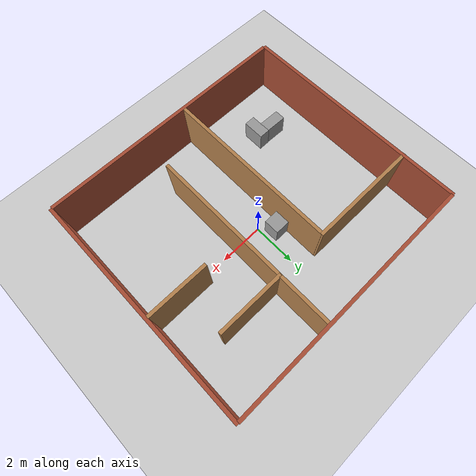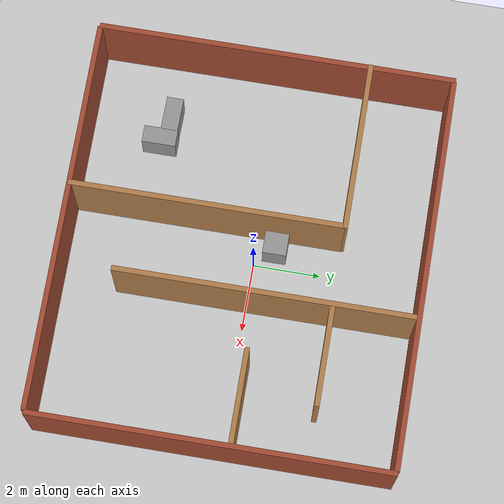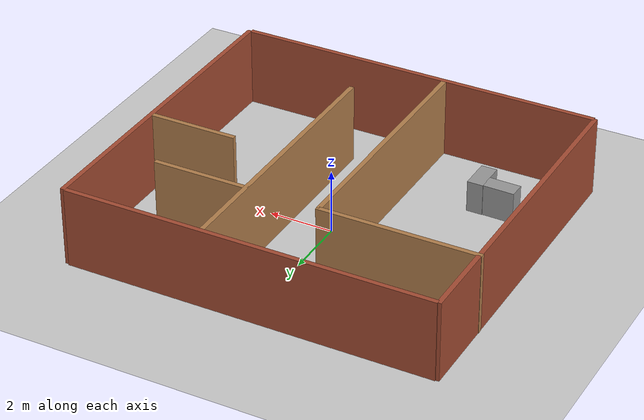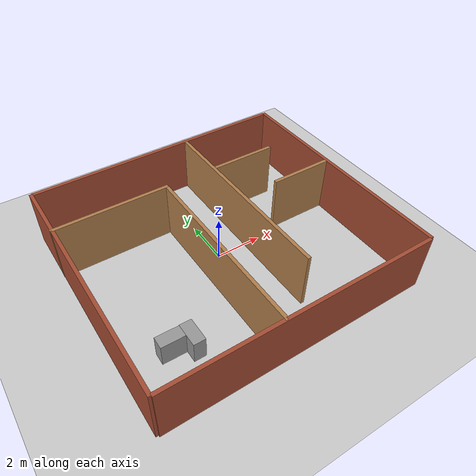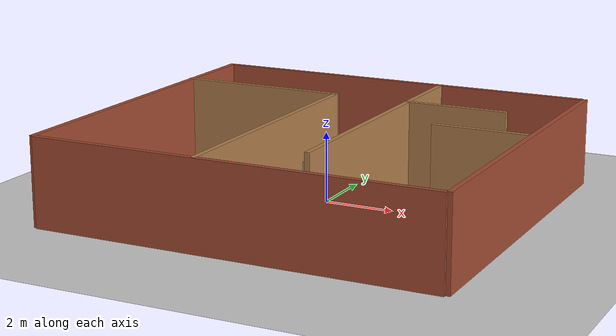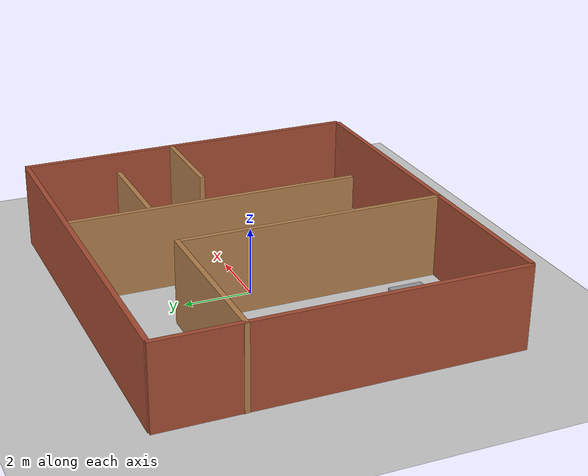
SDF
<sdf version='1.7'>
  <world name='default'>
    <plugin name='gazebo_ros_state' filename='libgazebo_ros_state.so'>
      <ros>
        <namespace>/test</namespace>
        <argument>model_states:=model_states_demo</argument>
      </ros>
      <update_rate>1.0</update_rate>
    </plugin>
    <light name='sun' type='directional'>
      <cast_shadows>0</cast_shadows>
      <pose>0 0 10 0 -0 0</pose>
      <diffuse>0.8 0.8 0.8 1</diffuse>
      <specular>0.2 0.2 0.2 1</specular>
      <attenuation>
        <range>1000</range>
        <constant>0.9</constant>
        <linear>0.01</linear>
        <quadratic>0.001</quadratic>
      </attenuation>
      <direction>-0.5 0.1 -0.9</direction>
      <spot>
        <inner_angle>0</inner_angle>
        <outer_angle>0</outer_angle>
        <falloff>0</falloff>
      </spot>
    </light>
    <model name='ground_plane'>
      <static>1</static>
      <link name='link'>
        <collision name='collision'>
          <geometry>
            <plane>
              <normal>0 0 1</normal>
              <size>100 100</size>
            </plane>
          </geometry>
          <surface>
            <contact>
              <collide_bitmask>65535</collide_bitmask>
              <ode />
            </contact>
            <friction>
              <ode>
                <mu>100</mu>
                <mu2>50</mu2>
              </ode>
              <torsional>
                <ode />
              </torsional>
            </friction>
            <bounce />
          </surface>
          <max_contacts>10</max_contacts>
        </collision>
        <visual name='visual'>
          <cast_shadows>0</cast_shadows>
          <geometry>
            <plane>
              <normal>0 0 1</normal>
              <size>100 100</size>
            </plane>
          </geometry>
          <material>
            <script>
              <uri>file://media/materials/scripts/gazebo.material</uri>
              <name>Gazebo/Grey</name>
            </script>
          </material>
        </visual>
        <self_collide>0</self_collide>
        <enable_wind>0</enable_wind>
        <kinematic>0</kinematic>
      </link>
    </model>
    <gravity>0 0 -9.8</gravity>
    <magnetic_field>6e-06 2.3e-05 -4.2e-05</magnetic_field>
    <atmosphere type='adiabatic' />
    <physics type='ode'>
      <max_step_size>0.001</max_step_size>
      <real_time_factor>1</real_time_factor>
      <real_time_update_rate>1000</real_time_update_rate>
    </physics>
    <scene>
      <ambient>0.4 0.4 0.4 1</ambient>
      <background>0.7 0.7 0.7 1</background>
      <shadows>0</shadows>
    </scene>
    <audio>
      <device>default</device>
    </audio>
    <wind />
    <spherical_coordinates>
      <surface_model>EARTH_WGS84</surface_model>
      <latitude_deg>0</latitude_deg>
      <longitude_deg>0</longitude_deg>
      <elevation>0</elevation>
      <heading_deg>0</heading_deg>
    </spherical_coordinates>
    <model name='social_env_test'>
      <link name='Wall_10'>
        <pose>-4e-06 -5.48827 0 0 -0 3.14159</pose>
        <self_collide>0</self_collide>
        <enable_wind>0</enable_wind>
        <kinematic>0</kinematic>
        <visual name='Wall_10_Visual'>
          <pose>0 0 1.25 0 -0 0</pose>
          <geometry>
            <box>
              <size>11.5 0.15 2.5</size>
            </box>
          </geometry>
          <material>
            <script>
              <uri>file://media/materials/scripts/gazebo.material</uri>
              <name>Gazebo/Bricks</name>
            </script>
            <ambient>1 1 1 1</ambient>
            <shader type='pixel' />
          </material>
          <meta>
            <layer>0</layer>
          </meta>
          <transparency>0</transparency>
          <cast_shadows>1</cast_shadows>
        </visual>
        <collision name='Wall_10_Collision'>
          <laser_retro>0</laser_retro>
          <max_contacts>10</max_contacts>
          <pose>0 0 1.25 0 -0 0</pose>
          <geometry>
            <box>
              <size>11.5 0.15 2.5</size>
            </box>
          </geometry>
          <surface>
            <friction>
              <ode>
                <mu>1</mu>
                <mu2>1</mu2>
                <fdir1>0 0 0</fdir1>
                <slip1>0</slip1>
                <slip2>0</slip2>
              </ode>
              <torsional>
                <coefficient>1</coefficient>
                <patch_radius>0</patch_radius>
                <surface_radius>0</surface_radius>
                <use_patch_radius>1</use_patch_radius>
                <ode>
                  <slip>0</slip>
                </ode>
              </torsional>
            </friction>
            <bounce>
              <restitution_coefficient>0</restitution_coefficient>
              <threshold>1e+06</threshold>
            </bounce>
            <contact>
              <collide_without_contact>0</collide_without_contact>
              <collide_without_contact_bitmask>1</collide_without_contact_bitmask>
              <collide_bitmask>1</collide_bitmask>
              <ode>
                <soft_cfm>0</soft_cfm>
                <soft_erp>0.2</soft_erp>
                <kp>1e+13</kp>
                <kd>1</kd>
                <max_vel>0.01</max_vel>
                <min_depth>0</min_depth>
              </ode>
              <bullet>
                <split_impulse>1</split_impulse>
                <split_impulse_penetration_threshold>-0.01</split_impulse_penetration_threshold>
                <soft_cfm>0</soft_cfm>
                <soft_erp>0.2</soft_erp>
                <kp>1e+13</kp>
                <kd>1</kd>
              </bullet>
            </contact>
          </surface>
        </collision>
      </link>
      <link name='Wall_15'>
        <pose>-3.36885 2.48634 0 0 -0 0</pose>
        <self_collide>0</self_collide>
        <enable_wind>0</enable_wind>
        <kinematic>0</kinematic>
        <visual name='Wall_15_Visual'>
          <pose>0 0 1.25 0 -0 0</pose>
          <geometry>
            <box>
              <size>5 0.15 2.5</size>
            </box>
          </geometry>
          <material>
            <script>
              <uri>file://media/materials/scripts/gazebo.material</uri>
              <name>Gazebo/Wood</name>
            </script>
            <ambient>1 1 1 1</ambient>
            <shader type='pixel' />
          </material>
          <meta>
            <layer>0</layer>
          </meta>
          <transparency>0</transparency>
          <cast_shadows>1</cast_shadows>
        </visual>
        <collision name='Wall_15_Collision'>
          <laser_retro>0</laser_retro>
          <max_contacts>10</max_contacts>
          <pose>0 0 1.25 0 -0 0</pose>
          <geometry>
            <box>
              <size>5 0.15 2.5</size>
            </box>
          </geometry>
          <surface>
            <friction>
              <ode>
                <mu>1</mu>
                <mu2>1</mu2>
                <fdir1>0 0 0</fdir1>
                <slip1>0</slip1>
                <slip2>0</slip2>
              </ode>
              <torsional>
                <coefficient>1</coefficient>
                <patch_radius>0</patch_radius>
                <surface_radius>0</surface_radius>
                <use_patch_radius>1</use_patch_radius>
                <ode>
                  <slip>0</slip>
                </ode>
              </torsional>
            </friction>
            <bounce>
              <restitution_coefficient>0</restitution_coefficient>
              <threshold>1e+06</threshold>
            </bounce>
            <contact>
              <collide_without_contact>0</collide_without_contact>
              <collide_without_contact_bitmask>1</collide_without_contact_bitmask>
              <collide_bitmask>1</collide_bitmask>
              <ode>
                <soft_cfm>0</soft_cfm>
                <soft_erp>0.2</soft_erp>
                <kp>1e+13</kp>
                <kd>1</kd>
                <max_vel>0.01</max_vel>
                <min_depth>0</min_depth>
              </ode>
              <bullet>
                <split_impulse>1</split_impulse>
                <split_impulse_penetration_threshold>-0.01</split_impulse_penetration_threshold>
                <soft_cfm>0</soft_cfm>
                <soft_erp>0.2</soft_erp>
                <kp>1e+13</kp>
                <kd>1</kd>
              </bullet>
            </contact>
          </surface>
        </collision>
      </link>
      <link name='Wall_16'>
        <pose>-0.930907 -1.52206 -0 0 0 -1.5708</pose>
        <self_collide>0</self_collide>
        <enable_wind>0</enable_wind>
        <kinematic>0</kinematic>
        <inertial>
          <inertia>
            <ixx>0</ixx>
            <ixy>0</ixy>
            <ixz>0</ixz>
            <iyy>0</iyy>
            <iyz>0</iyz>
            <izz>0</izz>
          </inertia>
          <mass>0</mass>
          <pose>0 0 0 0 -0 0</pose>
        </inertial>
        <visual name='Wall_16_Visual'>
          <pose>0 0 1.25 0 -0 0</pose>
          <geometry>
            <box>
              <size>8.00736 0.15 2.5</size>
            </box>
          </geometry>
          <material>
            <script>
              <uri>file://media/materials/scripts/gazebo.material</uri>
              <name>Gazebo/Wood</name>
            </script>
            <ambient>1 1 1 1</ambient>
            <shader type='pixel' />
          </material>
          <meta>
            <layer>0</layer>
          </meta>
          <transparency>0</transparency>
          <cast_shadows>1</cast_shadows>
        </visual>
        <collision name='Wall_16_Collision'>
          <laser_retro>0</laser_retro>
          <max_contacts>10</max_contacts>
          <pose>0 0 1.25 0 -0 0</pose>
          <geometry>
            <box>
              <size>8.00736 0.15 2.5</size>
            </box>
          </geometry>
          <surface>
            <friction>
              <ode>
                <mu>1</mu>
                <mu2>1</mu2>
                <fdir1>0 0 0</fdir1>
                <slip1>0</slip1>
                <slip2>0</slip2>
              </ode>
              <torsional>
                <coefficient>1</coefficient>
                <patch_radius>0</patch_radius>
                <surface_radius>0</surface_radius>
                <use_patch_radius>1</use_patch_radius>
                <ode>
                  <slip>0</slip>
                </ode>
              </torsional>
            </friction>
            <bounce>
              <restitution_coefficient>0</restitution_coefficient>
              <threshold>1e+06</threshold>
            </bounce>
            <contact>
              <collide_without_contact>0</collide_without_contact>
              <collide_without_contact_bitmask>1</collide_without_contact_bitmask>
              <collide_bitmask>1</collide_bitmask>
              <ode>
                <soft_cfm>0</soft_cfm>
                <soft_erp>0.2</soft_erp>
                <kp>1e+13</kp>
                <kd>1</kd>
                <max_vel>0.01</max_vel>
                <min_depth>0</min_depth>
              </ode>
              <bullet>
                <split_impulse>1</split_impulse>
                <split_impulse_penetration_threshold>-0.01</split_impulse_penetration_threshold>
                <soft_cfm>0</soft_cfm>
                <soft_erp>0.2</soft_erp>
                <kp>1e+13</kp>
                <kd>1</kd>
              </bullet>
            </contact>
          </surface>
        </collision>
      </link>
      <link name='Wall_39'>
        <pose>1.35978 0.509333 0 0 -0 1.5708</pose>
        <self_collide>0</self_collide>
        <enable_wind>0</enable_wind>
        <kinematic>0</kinematic>
        <gravity>1</gravity>
        <inertial>
          <mass>1</mass>
          <pose>0 0 0 0 -0 0</pose>
          <inertia>
            <ixx>1</ixx>
            <ixy>0</ixy>
            <ixz>0</ixz>
            <iyy>1</iyy>
            <iyz>0</iyz>
            <izz>1</izz>
          </inertia>
        </inertial>
        <visual name='Wall_39_Visual'>
          <pose>0 0 1.25 0 -0 0</pose>
          <geometry>
            <box>
              <size>8.7 0.15 2.5</size>
            </box>
          </geometry>
          <material>
            <script>
              <uri>file://media/materials/scripts/gazebo.material</uri>
              <name>Gazebo/Wood</name>
            </script>
            <ambient>1 1 1 1</ambient>
            <shader type='pixel'>
              <normal_map>__default__</normal_map>
            </shader>
            <diffuse>1 1 1 1</diffuse>
            <specular>0.2 0.2 0.2 1</specular>
            <emissive>0 0 0 1</emissive>
          </material>
          <meta>
            <layer>0</layer>
          </meta>
          <transparency>0</transparency>
          <cast_shadows>1</cast_shadows>
        </visual>
        <collision name='Wall_39_Collision'>
          <laser_retro>0</laser_retro>
          <max_contacts>10</max_contacts>
          <pose>0 0 1.25 0 -0 0</pose>
          <geometry>
            <box>
              <size>8.7 0.15 2.5</size>
            </box>
          </geometry>
          <surface>
            <friction>
              <ode>
                <mu>1</mu>
                <mu2>1</mu2>
                <fdir1>0 0 0</fdir1>
                <slip1>0</slip1>
                <slip2>0</slip2>
              </ode>
              <torsional>
                <coefficient>1</coefficient>
                <patch_radius>0</patch_radius>
                <surface_radius>0</surface_radius>
                <use_patch_radius>1</use_patch_radius>
                <ode>
                  <slip>0</slip>
                </ode>
              </torsional>
            </friction>
            <bounce>
              <restitution_coefficient>0</restitution_coefficient>
              <threshold>1e+06</threshold>
            </bounce>
            <contact>
              <collide_without_contact>0</collide_without_contact>
              <collide_without_contact_bitmask>1</collide_without_contact_bitmask>
              <collide_bitmask>1</collide_bitmask>
              <ode>
                <soft_cfm>0</soft_cfm>
                <soft_erp>0.2</soft_erp>
                <kp>1e+13</kp>
                <kd>1</kd>
                <max_vel>0.01</max_vel>
                <min_depth>0</min_depth>
              </ode>
              <bullet>
                <split_impulse>1</split_impulse>
                <split_impulse_penetration_threshold>-0.01</split_impulse_penetration_threshold>
                <soft_cfm>0</soft_cfm>
                <soft_erp>0.2</soft_erp>
                <kp>1e+13</kp>
                <kd>1</kd>
              </bullet>
            </contact>
          </surface>
        </collision>
      </link>
      <link name='Wall_41'>
        <pose>2.81531 2.48495 0 0 -0 0</pose>
        <self_collide>0</self_collide>
        <enable_wind>0</enable_wind>
        <kinematic>0</kinematic>
        <visual name='Wall_41_Visual'>
          <pose>0 0 1.25 0 -0 0</pose>
          <geometry>
            <box>
              <size>3 0.15 2.5</size>
            </box>
          </geometry>
          <material>
            <script>
              <uri>file://media/materials/scripts/gazebo.material</uri>
              <name>Gazebo/Wood</name>
            </script>
            <ambient>1 1 1 1</ambient>
            <shader type='pixel' />
          </material>
          <meta>
            <layer>0</layer>
          </meta>
          <transparency>0</transparency>
          <cast_shadows>1</cast_shadows>
        </visual>
        <collision name='Wall_41_Collision'>
          <laser_retro>0</laser_retro>
          <max_contacts>10</max_contacts>
          <pose>0 0 1.25 0 -0 0</pose>
          <geometry>
            <box>
              <size>3 0.15 2.5</size>
            </box>
          </geometry>
          <surface>
            <friction>
              <ode>
                <mu>1</mu>
                <mu2>1</mu2>
                <fdir1>0 0 0</fdir1>
                <slip1>0</slip1>
                <slip2>0</slip2>
              </ode>
              <torsional>
                <coefficient>1</coefficient>
                <patch_radius>0</patch_radius>
                <surface_radius>0</surface_radius>
                <use_patch_radius>1</use_patch_radius>
                <ode>
                  <slip>0</slip>
                </ode>
              </torsional>
            </friction>
            <bounce>
              <restitution_coefficient>0</restitution_coefficient>
              <threshold>1e+06</threshold>
            </bounce>
            <contact>
              <collide_without_contact>0</collide_without_contact>
              <collide_without_contact_bitmask>1</collide_without_contact_bitmask>
              <collide_bitmask>1</collide_bitmask>
              <ode>
                <soft_cfm>0</soft_cfm>
                <soft_erp>0.2</soft_erp>
                <kp>1e+13</kp>
                <kd>1</kd>
                <max_vel>0.01</max_vel>
                <min_depth>0</min_depth>
              </ode>
              <bullet>
                <split_impulse>1</split_impulse>
                <split_impulse_penetration_threshold>-0.01</split_impulse_penetration_threshold>
                <soft_cfm>0</soft_cfm>
                <soft_erp>0.2</soft_erp>
                <kp>1e+13</kp>
                <kd>1</kd>
              </bullet>
            </contact>
          </surface>
        </collision>
      </link>
      <link name='Wall_43'>
        <pose>4.36861 0.316486 0 0 -0 0</pose>
        <self_collide>0</self_collide>
        <enable_wind>0</enable_wind>
        <kinematic>0</kinematic>
        <visual name='Wall_43_Visual'>
          <pose>0 0 1.25 0 -0 0</pose>
          <geometry>
            <box>
              <size>2.75 0.15 2.5</size>
            </box>
          </geometry>
          <material>
            <script>
              <uri>file://media/materials/scripts/gazebo.material</uri>
              <name>Gazebo/Wood</name>
            </script>
            <ambient>1 1 1 1</ambient>
            <shader type='pixel' />
          </material>
          <meta>
            <layer>0</layer>
          </meta>
          <transparency>0</transparency>
          <cast_shadows>1</cast_shadows>
        </visual>
        <collision name='Wall_43_Collision'>
          <laser_retro>0</laser_retro>
          <max_contacts>10</max_contacts>
          <pose>0 0 1.25 0 -0 0</pose>
          <geometry>
            <box>
              <size>2.75 0.15 2.5</size>
            </box>
          </geometry>
          <surface>
            <friction>
              <ode>
                <mu>1</mu>
                <mu2>1</mu2>
                <fdir1>0 0 0</fdir1>
                <slip1>0</slip1>
                <slip2>0</slip2>
              </ode>
              <torsional>
                <coefficient>1</coefficient>
                <patch_radius>0</patch_radius>
                <surface_radius>0</surface_radius>
                <use_patch_radius>1</use_patch_radius>
                <ode>
                  <slip>0</slip>
                </ode>
              </torsional>
            </friction>
            <bounce>
              <restitution_coefficient>0</restitution_coefficient>
              <threshold>1e+06</threshold>
            </bounce>
            <contact>
              <collide_without_contact>0</collide_without_contact>
              <collide_without_contact_bitmask>1</collide_without_contact_bitmask>
              <collide_bitmask>1</collide_bitmask>
              <ode>
                <soft_cfm>0</soft_cfm>
                <soft_erp>0.2</soft_erp>
                <kp>1e+13</kp>
                <kd>1</kd>
                <max_vel>0.01</max_vel>
                <min_depth>0</min_depth>
              </ode>
              <bullet>
                <split_impulse>1</split_impulse>
                <split_impulse_penetration_threshold>-0.01</split_impulse_penetration_threshold>
                <soft_cfm>0</soft_cfm>
                <soft_erp>0.2</soft_erp>
                <kp>1e+13</kp>
                <kd>1</kd>
              </bullet>
            </contact>
          </surface>
        </collision>
      </link>
      <link name='Wall_7'>
        <pose>-5.78174 -0.261667 0 0 -0 1.5708</pose>
        <self_collide>0</self_collide>
        <enable_wind>0</enable_wind>
        <kinematic>0</kinematic>
        <inertial>
          <inertia>
            <ixx>0</ixx>
            <ixy>0</ixy>
            <ixz>0</ixz>
            <iyy>0</iyy>
            <iyz>0</iyz>
            <izz>0</izz>
          </inertia>
          <mass>0</mass>
          <pose>0 0 0 0 -0 0</pose>
        </inertial>
        <visual name='Wall_7_Visual'>
          <pose>0 0 1.25 0 -0 0</pose>
          <geometry>
            <box>
              <size>10.4795 0.15 2.5</size>
            </box>
          </geometry>
          <material>
            <script>
              <uri>file://media/materials/scripts/gazebo.material</uri>
              <name>Gazebo/Bricks</name>
            </script>
            <ambient>1 1 1 1</ambient>
            <shader type='pixel' />
          </material>
          <meta>
            <layer>0</layer>
          </meta>
          <transparency>0</transparency>
          <cast_shadows>1</cast_shadows>
        </visual>
        <collision name='Wall_7_Collision'>
          <laser_retro>0</laser_retro>
          <max_contacts>10</max_contacts>
          <pose>0 0 1.25 0 -0 0</pose>
          <geometry>
            <box>
              <size>10.4795 0.15 2.5</size>
            </box>
          </geometry>
          <surface>
            <friction>
              <ode>
                <mu>1</mu>
                <mu2>1</mu2>
                <fdir1>0 0 0</fdir1>
                <slip1>0</slip1>
                <slip2>0</slip2>
              </ode>
              <torsional>
                <coefficient>1</coefficient>
                <patch_radius>0</patch_radius>
                <surface_radius>0</surface_radius>
                <use_patch_radius>1</use_patch_radius>
                <ode>
                  <slip>0</slip>
                </ode>
              </torsional>
            </friction>
            <bounce>
              <restitution_coefficient>0</restitution_coefficient>
              <threshold>1e+06</threshold>
            </bounce>
            <contact>
              <collide_without_contact>0</collide_without_contact>
              <collide_without_contact_bitmask>1</collide_without_contact_bitmask>
              <collide_bitmask>1</collide_bitmask>
              <ode>
                <soft_cfm>0</soft_cfm>
                <soft_erp>0.2</soft_erp>
                <kp>1e+13</kp>
                <kd>1</kd>
                <max_vel>0.01</max_vel>
                <min_depth>0</min_depth>
              </ode>
              <bullet>
                <split_impulse>1</split_impulse>
                <split_impulse_penetration_threshold>-0.01</split_impulse_penetration_threshold>
                <soft_cfm>0</soft_cfm>
                <soft_erp>0.2</soft_erp>
                <kp>1e+13</kp>
                <kd>1</kd>
              </bullet>
            </contact>
          </surface>
        </collision>
      </link>
      <link name='Wall_8'>
        <pose>0 4.93338 0 0 -0 0</pose>
        <self_collide>0</self_collide>
        <enable_wind>0</enable_wind>
        <kinematic>0</kinematic>
        <visual name='Wall_8_Visual'>
          <pose>0 0 1.25 0 -0 0</pose>
          <geometry>
            <box>
              <size>11.5 0.15 2.5</size>
            </box>
          </geometry>
          <material>
            <script>
              <uri>file://media/materials/scripts/gazebo.material</uri>
              <name>Gazebo/Bricks</name>
            </script>
            <ambient>1 1 1 1</ambient>
            <shader type='pixel' />
          </material>
          <meta>
            <layer>0</layer>
          </meta>
          <transparency>0</transparency>
          <cast_shadows>1</cast_shadows>
        </visual>
        <collision name='Wall_8_Collision'>
          <laser_retro>0</laser_retro>
          <max_contacts>10</max_contacts>
          <pose>0 0 1.25 0 -0 0</pose>
          <geometry>
            <box>
              <size>11.5 0.15 2.5</size>
            </box>
          </geometry>
          <surface>
            <friction>
              <ode>
                <mu>1</mu>
                <mu2>1</mu2>
                <fdir1>0 0 0</fdir1>
                <slip1>0</slip1>
                <slip2>0</slip2>
              </ode>
              <torsional>
                <coefficient>1</coefficient>
                <patch_radius>0</patch_radius>
                <surface_radius>0</surface_radius>
                <use_patch_radius>1</use_patch_radius>
                <ode>
                  <slip>0</slip>
                </ode>
              </torsional>
            </friction>
            <bounce>
              <restitution_coefficient>0</restitution_coefficient>
              <threshold>1e+06</threshold>
            </bounce>
            <contact>
              <collide_without_contact>0</collide_without_contact>
              <collide_without_contact_bitmask>1</collide_without_contact_bitmask>
              <collide_bitmask>1</collide_bitmask>
              <ode>
                <soft_cfm>0</soft_cfm>
                <soft_erp>0.2</soft_erp>
                <kp>1e+13</kp>
                <kd>1</kd>
                <max_vel>0.01</max_vel>
                <min_depth>0</min_depth>
              </ode>
              <bullet>
                <split_impulse>1</split_impulse>
                <split_impulse_penetration_threshold>-0.01</split_impulse_penetration_threshold>
                <soft_cfm>0</soft_cfm>
                <soft_erp>0.2</soft_erp>
                <kp>1e+13</kp>
                <kd>1</kd>
              </bullet>
            </contact>
          </surface>
        </collision>
      </link>
      <link name='Wall_9'>
        <pose>5.80089 -0.25878 0 0 0 -1.5708</pose>
        <self_collide>0</self_collide>
        <enable_wind>0</enable_wind>
        <kinematic>0</kinematic>
        <gravity>1</gravity>
        <inertial>
          <mass>1.2018</mass>
          <pose>0 0 0 0 -0 0</pose>
          <inertia>
            <ixx>0.628189</ixx>
            <ixy>0</ixy>
            <ixz>0</ixz>
            <iyy>11.5743</iyy>
            <iyz>0</iyz>
            <izz>10.9506</izz>
          </inertia>
        </inertial>
        <visual name='Wall_9_Visual'>
          <pose>0 0 1.25 0 -0 0</pose>
          <geometry>
            <box>
              <size>10.4556 0.15 2.5</size>
            </box>
          </geometry>
          <material>
            <script>
              <uri>file://media/materials/scripts/gazebo.material</uri>
              <name>Gazebo/Bricks</name>
            </script>
            <ambient>1 1 1 1</ambient>
            <shader type='pixel'>
              <normal_map>__default__</normal_map>
            </shader>
            <diffuse>1 1 1 1</diffuse>
            <specular>0.2 0.2 0.2 1</specular>
            <emissive>0 0 0 1</emissive>
          </material>
          <meta>
            <layer>0</layer>
          </meta>
          <transparency>0</transparency>
          <cast_shadows>1</cast_shadows>
        </visual>
        <collision name='Wall_9_Collision'>
          <laser_retro>0</laser_retro>
          <max_contacts>10</max_contacts>
          <pose>0 0 1.25 0 -0 0</pose>
          <geometry>
            <box>
              <size>10.4556 0.15 2.5</size>
            </box>
          </geometry>
          <surface>
            <friction>
              <ode>
                <mu>1</mu>
                <mu2>1</mu2>
                <fdir1>0 0 0</fdir1>
                <slip1>0</slip1>
                <slip2>0</slip2>
              </ode>
              <torsional>
                <coefficient>1</coefficient>
                <patch_radius>0</patch_radius>
                <surface_radius>0</surface_radius>
                <use_patch_radius>1</use_patch_radius>
                <ode>
                  <slip>0</slip>
                </ode>
              </torsional>
            </friction>
            <bounce>
              <restitution_coefficient>0</restitution_coefficient>
              <threshold>1e+06</threshold>
            </bounce>
            <contact>
              <collide_without_contact>0</collide_without_contact>
              <collide_without_contact_bitmask>1</collide_without_contact_bitmask>
              <collide_bitmask>1</collide_bitmask>
              <ode>
                <soft_cfm>0</soft_cfm>
                <soft_erp>0.2</soft_erp>
                <kp>1e+13</kp>
                <kd>1</kd>
                <max_vel>0.01</max_vel>
                <min_depth>0</min_depth>
              </ode>
              <bullet>
                <split_impulse>1</split_impulse>
                <split_impulse_penetration_threshold>-0.01</split_impulse_penetration_threshold>
                <soft_cfm>0</soft_cfm>
                <soft_erp>0.2</soft_erp>
                <kp>1e+13</kp>
                <kd>1</kd>
              </bullet>
            </contact>
          </surface>
        </collision>
      </link>
      <link name='link_1'>
        <inertial>
          <mass>1</mass>
          <inertia>
            <ixx>0.166667</ixx>
            <ixy>0</ixy>
            <ixz>0</ixz>
            <iyy>0.166667</iyy>
            <iyz>0</iyz>
            <izz>0.166667</izz>
          </inertia>
          <pose>0 0 0 0 -0 0</pose>
        </inertial>
        <pose>-3.21562 -3.33695 0.5 0 -0 0</pose>
        <gravity>1</gravity>
        <self_collide>0</self_collide>
        <kinematic>0</kinematic>
        <enable_wind>0</enable_wind>
        <visual name='visual'>
          <pose>0 0 0 0 -0 0</pose>
          <geometry>
            <box>
              <size>0.5 1 1</size>
            </box>
          </geometry>
          <material>
            <lighting>1</lighting>
            <script>
              <uri>file://media/materials/scripts/gazebo.material</uri>
              <name>Gazebo/Grey</name>
            </script>
            <shader type='pixel'>
              <normal_map>__default__</normal_map>
            </shader>
            <ambient>0.3 0.3 0.3 1</ambient>
            <diffuse>0.7 0.7 0.7 1</diffuse>
            <specular>0.01 0.01 0.01 1</specular>
            <emissive>0 0 0 1</emissive>
          </material>
          <transparency>0</transparency>
          <cast_shadows>1</cast_shadows>
        </visual>
        <collision name='collision'>
          <laser_retro>0</laser_retro>
          <max_contacts>10</max_contacts>
          <pose>0 0 0 0 -0 0</pose>
          <geometry>
            <box>
              <size>0.5 1 1</size>
            </box>
          </geometry>
          <surface>
            <friction>
              <ode>
                <mu>1</mu>
                <mu2>1</mu2>
                <fdir1>0 0 0</fdir1>
                <slip1>0</slip1>
                <slip2>0</slip2>
              </ode>
              <torsional>
                <coefficient>1</coefficient>
                <patch_radius>0</patch_radius>
                <surface_radius>0</surface_radius>
                <use_patch_radius>1</use_patch_radius>
                <ode>
                  <slip>0</slip>
                </ode>
              </torsional>
            </friction>
            <bounce>
              <restitution_coefficient>0</restitution_coefficient>
              <threshold>1e+06</threshold>
            </bounce>
            <contact>
              <collide_without_contact>0</collide_without_contact>
              <collide_without_contact_bitmask>1</collide_without_contact_bitmask>
              <collide_bitmask>1</collide_bitmask>
              <ode>
                <soft_cfm>0</soft_cfm>
                <soft_erp>0.2</soft_erp>
                <kp>1e+13</kp>
                <kd>1</kd>
                <max_vel>0.01</max_vel>
                <min_depth>0</min_depth>
              </ode>
              <bullet>
                <split_impulse>1</split_impulse>
                <split_impulse_penetration_threshold>-0.01</split_impulse_penetration_threshold>
                <soft_cfm>0</soft_cfm>
                <soft_erp>0.2</soft_erp>
                <kp>1e+13</kp>
                <kd>1</kd>
              </bullet>
            </contact>
          </surface>
        </collision>
      </link>
      <link name='link_1_clone'>
        <inertial>
          <mass>1</mass>
          <inertia>
            <ixx>0.166667</ixx>
            <ixy>0</ixy>
            <ixz>0</ixz>
            <iyy>0.166667</iyy>
            <iyz>0</iyz>
            <izz>0.166667</izz>
          </inertia>
          <pose>0 0 0 0 -0 0</pose>
        </inertial>
        <pose>-3.94987 -3.0917 0.5 0 0 -1.58899</pose>
        <gravity>1</gravity>
        <self_collide>0</self_collide>
        <kinematic>0</kinematic>
        <enable_wind>0</enable_wind>
        <visual name='visual'>
          <pose>0 0 0 0 -0 0</pose>
          <geometry>
            <box>
              <size>0.5 1 1</size>
            </box>
          </geometry>
          <material>
            <lighting>1</lighting>
            <script>
              <uri>file://media/materials/scripts/gazebo.material</uri>
              <name>Gazebo/Grey</name>
            </script>
            <shader type='pixel'>
              <normal_map>__default__</normal_map>
            </shader>
            <ambient>0.3 0.3 0.3 1</ambient>
            <diffuse>0.7 0.7 0.7 1</diffuse>
            <specular>0.01 0.01 0.01 1</specular>
            <emissive>0 0 0 1</emissive>
          </material>
          <transparency>0</transparency>
          <cast_shadows>1</cast_shadows>
        </visual>
        <collision name='collision'>
          <laser_retro>0</laser_retro>
          <max_contacts>10</max_contacts>
          <pose>0 0 0 0 -0 0</pose>
          <geometry>
            <box>
              <size>0.5 1 1</size>
            </box>
          </geometry>
          <surface>
            <friction>
              <ode>
                <mu>1</mu>
                <mu2>1</mu2>
                <fdir1>0 0 0</fdir1>
                <slip1>0</slip1>
                <slip2>0</slip2>
              </ode>
              <torsional>
                <coefficient>1</coefficient>
                <patch_radius>0</patch_radius>
                <surface_radius>0</surface_radius>
                <use_patch_radius>1</use_patch_radius>
                <ode>
                  <slip>0</slip>
                </ode>
              </torsional>
            </friction>
            <bounce>
              <restitution_coefficient>0</restitution_coefficient>
              <threshold>1e+06</threshold>
            </bounce>
            <contact>
              <collide_without_contact>0</collide_without_contact>
              <collide_without_contact_bitmask>1</collide_without_contact_bitmask>
              <collide_bitmask>1</collide_bitmask>
              <ode>
                <soft_cfm>0</soft_cfm>
                <soft_erp>0.2</soft_erp>
                <kp>1e+13</kp>
                <kd>1</kd>
                <max_vel>0.01</max_vel>
                <min_depth>0</min_depth>
              </ode>
              <bullet>
                <split_impulse>1</split_impulse>
                <split_impulse_penetration_threshold>-0.01</split_impulse_penetration_threshold>
                <soft_cfm>0</soft_cfm>
                <soft_erp>0.2</soft_erp>
                <kp>1e+13</kp>
                <kd>1</kd>
              </bullet>
            </contact>
          </surface>
        </collision>
      </link>
      <link name='link_2'>
        <inertial>
          <mass>1</mass>
          <inertia>
            <ixx>0.166667</ixx>
            <ixy>0</ixy>
            <ixz>0</ixz>
            <iyy>0.166667</iyy>
            <iyz>0</iyz>
            <izz>0.166667</izz>
          </inertia>
          <pose>0 0 0 0 -0 0</pose>
        </inertial>
        <pose>-0.542134 0.577125 0.5 0 -0 0</pose>
        <gravity>1</gravity>
        <self_collide>0</self_collide>
        <kinematic>0</kinematic>
        <enable_wind>0</enable_wind>
        <visual name='visual'>
          <pose>0 0 0 0 -0 0</pose>
          <geometry>
            <box>
              <size>0.7 0.7 1</size>
            </box>
          </geometry>
          <material>
            <lighting>1</lighting>
            <script>
              <uri>file://media/materials/scripts/gazebo.material</uri>
              <name>Gazebo/Grey</name>
            </script>
            <shader type='pixel'>
              <normal_map>__default__</normal_map>
            </shader>
            <ambient>0.3 0.3 0.3 1</ambient>
            <diffuse>0.7 0.7 0.7 1</diffuse>
            <specular>0.01 0.01 0.01 1</specular>
            <emissive>0 0 0 1</emissive>
          </material>
          <transparency>0</transparency>
          <cast_shadows>1</cast_shadows>
        </visual>
        <collision name='collision'>
          <laser_retro>0</laser_retro>
          <max_contacts>10</max_contacts>
          <pose>0 0 0 0 -0 0</pose>
          <geometry>
            <box>
              <size>0.7 0.7 1</size>
            </box>
          </geometry>
          <surface>
            <friction>
              <ode>
                <mu>1</mu>
                <mu2>1</mu2>
                <fdir1>0 0 0</fdir1>
                <slip1>0</slip1>
                <slip2>0</slip2>
              </ode>
              <torsional>
                <coefficient>1</coefficient>
                <patch_radius>0</patch_radius>
                <surface_radius>0</surface_radius>
                <use_patch_radius>1</use_patch_radius>
                <ode>
                  <slip>0</slip>
                </ode>
              </torsional>
            </friction>
            <bounce>
              <restitution_coefficient>0</restitution_coefficient>
              <threshold>1e+06</threshold>
            </bounce>
            <contact>
              <collide_without_contact>0</collide_without_contact>
              <collide_without_contact_bitmask>1</collide_without_contact_bitmask>
              <collide_bitmask>1</collide_bitmask>
              <ode>
                <soft_cfm>0</soft_cfm>
                <soft_erp>0.2</soft_erp>
                <kp>1e+13</kp>
                <kd>1</kd>
                <max_vel>0.01</max_vel>
                <min_depth>0</min_depth>
              </ode>
              <bullet>
                <split_impulse>1</split_impulse>
                <split_impulse_penetration_threshold>-0.01</split_impulse_penetration_threshold>
                <soft_cfm>0</soft_cfm>
                <soft_erp>0.2</soft_erp>
                <kp>1e+13</kp>
                <kd>1</kd>
              </bullet>
            </contact>
          </surface>
        </collision>
      </link>
      <static>1</static>
      <allow_auto_disable>1</allow_auto_disable>
    </model>
    <gui fullscreen='0'>
      <camera name='user_camera'>
        <pose>0 0 21.3976 3.14159 1.57079 3.14159</pose>
        <view_controller>orbit</view_controller>
        <projection_type>perspective</projection_type>
      </camera>
    </gui>
  </world>
</sdf>
